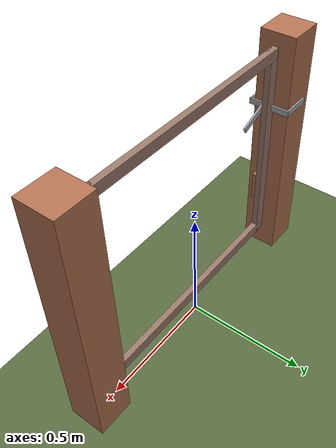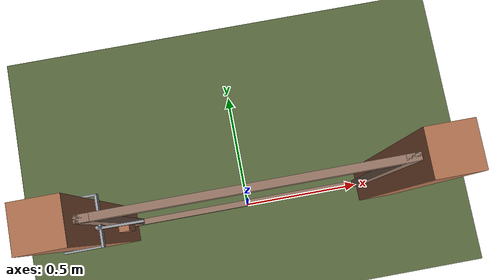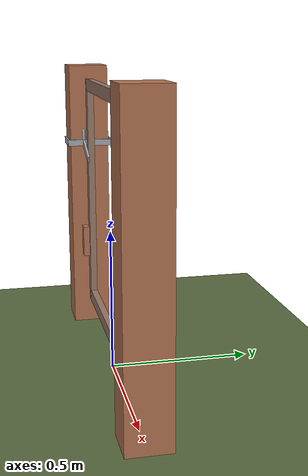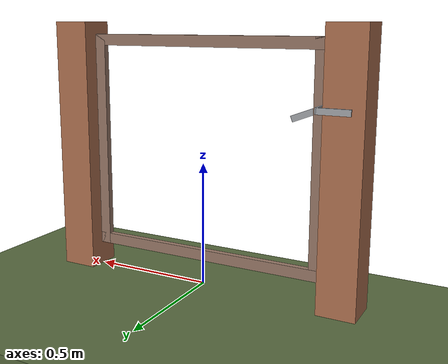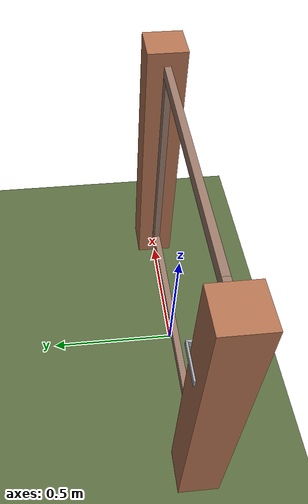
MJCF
<?xml version="1.0" ?>
<mujoco model="db0989_gate_swing_minimal">
  <compiler angle="radian" meshdir="../../hardware" texturedir="../../textures" autolimits="true" inertiafromgeom="false"/>
  <option timestep="0.002" integrator="implicitfast" cone="elliptic" impratio="10" noslip_iterations="3">
    <flag multiccd="enable"/>
  </option>
  <size memory="16M"/>
  <default>
    <geom condim="4" solref="0.005 1" solimp="0.95 0.99 0.001"/>
    <joint solreflimit="0.005 1" solimplimit="0.95 0.99 0.001"/>
    <tendon solreflimit="0.005 1"/>
    <equality solref="0.002 1"/>
  </default>
  <visual>
    <headlight ambient="0.4 0.4 0.4" diffuse="0.7 0.7 0.7" specular="0.2 0.2 0.2"/>
    <quality shadowsize="4096"/>
    <map znear="0.01" zfar="60"/>
  </visual>
  <asset>
    <material name="mat_floor" rgba="0.35 0.42 0.25 1" specular="0.2" shininess="0.15" reflectance="0"/>
    <material name="mat_wall" rgba="0.78 0.76 0.7 1" specular="0.2" shininess="0.1" reflectance="0"/>
    <material name="mat_leaf" rgba="0.6 0.475 0.41 1" specular="0.2" shininess="0.4" reflectance="0"/>
    <material name="mat_hinge" rgba="0.65 0.66 0.68 1" specular="0.74" shininess="0.5" reflectance="0.36"/>
    <material name="mat_op_steel_galvanized" rgba="0.65 0.66 0.68 1" specular="0.74" shininess="0.5" reflectance="0.36"/>
    <material name="mat_frame" rgba="0.7 0.45 0.32 1" specular="0.2" shininess="0.4" reflectance="0"/>
    <material name="mat_fence" rgba="0.7 0.45 0.32 1" specular="0.2" shininess="0.4" reflectance="0"/>
    <texture name="skybox" type="skybox" builtin="gradient" rgb1="0.6 0.7 0.85" rgb2="0.9 0.92 0.95" width="256" height="256"/>
  </asset>
  <worldbody>
    <light name="sun" pos="1.5 -2.5 4" dir="-0.3 0.5 -0.8" directional="true" diffuse="0.8 0.8 0.8" specular="0.3 0.3 0.3" castshadow="true"/>
    <light name="fill" pos="-1.5 2.5 3" dir="0.3 -0.5 -0.7" directional="true" diffuse="0.35 0.35 0.4" castshadow="false"/>
    <camera name="robot_view" pos="0 -1.875 0.985" xyaxes="1 0 0 0 0.26963 0.962964" fovy="52"/>
    <camera name="far_view" pos="0 1.875 0.985" xyaxes="-1 0 0 0 -0.26963 0.962964" fovy="52"/>
    <camera name="iso" pos="-1.425 -1.575 1.285" xyaxes="0.741536 -0.670913 0 0.242917 0.268487 0.932151" fovy="46"/>
    <camera name="detail_handle" pos="-0.306 -0.8245 1.085" xyaxes="0.97561 0.219512 0 -0.070934 0.315262 0.94635" fovy="38"/>
    <geom name="floor" type="box" size="6 6 0.05" pos="0 0 -0.05" material="mat_floor" group="0" contype="1" conaffinity="1" friction="0.8 0.005 0.0001" density="2400"/>
    <geom name="post_hinge" type="box" size="0.075 0.075 0.525" pos="0.581 0 0.525" material="mat_frame" group="0" contype="1" conaffinity="1" friction="0.6 0.005 0.0001" density="350"/>
    <geom name="post_latch" type="box" size="0.075 0.075 0.525" pos="-0.581 0 0.525" material="mat_frame" group="0" contype="1" conaffinity="1" friction="0.6 0.005 0.0001" density="350"/>
    <geom name="gate_stop" type="box" size="0.02 0.012 0.06" pos="-0.486 -0.0245 0.35" material="mat_frame" group="0" contype="1" conaffinity="1" friction="0.6 0.005 0.0001" density="350"/>
    <site name="approach_point" pos="0 -1.5 0" quat="1 0 0 0" size="0.05" rgba="0.2 0.9 0.2 0.5" group="4"/>
    <site name="goal_point" pos="0 1.5 0" quat="1 0 0 0" size="0.05" rgba="0.2 0.9 0.2 0.5" group="4"/>
    <site name="door_plane_center" pos="0 0 0.46" quat="1 0 0 0" size="0.02" rgba="0.2 0.9 0.2 0.5" group="4"/>
    <body name="leaf" pos="0.506 0 0">
      <inertial pos="-0.503 0 0.55" mass="9.457237" quat="0 0 0.707107 0.707107" diaginertia="0.639167779 0.788947692 1.427130343"/>
      <joint name="leaf_hinge" type="hinge" axis="0 0 -1" pos="-0.003 0.05 0" limited="true" range="0 1.745329" damping="0.21254" frictionloss="6.768484" armature="0.02"/>
      <geom name="leaf_slab_col" type="box" size="0.5 0.0125 0.45" pos="-0.503 0 0.55" material="mat_leaf" group="3" contype="1" conaffinity="1" rgba="0.8 0.3 0.3 0.25" friction="0.35 0.005 0.0001" density="1"/>
      <geom name="leaf_rail_b" type="box" size="0.5 0.0125 0.0225" pos="-0.503 0 0.1225" material="mat_leaf" group="1" contype="0" conaffinity="0" density="1"/>
      <geom name="leaf_rail_t" type="box" size="0.5 0.0125 0.0225" pos="-0.503 0 0.9775" material="mat_leaf" group="1" contype="0" conaffinity="0" density="1"/>
      <geom name="leaf_stile_h" type="box" size="0.0225 0.0125 0.45" pos="-0.0255 0 0.55" material="mat_leaf" group="1" contype="0" conaffinity="0" density="1"/>
      <geom name="leaf_stile_l" type="box" size="0.0225 0.0125 0.45" pos="-0.9805 0 0.55" material="mat_leaf" group="1" contype="0" conaffinity="0" density="1"/>
      <site name="leaf_edge_mid" pos="-1.003 0 0.45" quat="1 0 0 0" size="0.02" rgba="0.2 0.9 0.2 0.5" group="4"/>
      <body name="leaf_fork" pos="-0.863 0 0.7">
        <inertial pos="-0.134316 -0.007655 0.0449" mass="0.252369" quat="0.400494 0.085372 0.037573 0.911539" diaginertia="0.000796403 0.001031722 0.001738066"/>
        <joint name="leaf_fork_hinge" type="hinge" axis="0 1 0" limited="true" range="0 1.2" damping="0.049205" frictionloss="0.008804" armature="0.0001"/>
        <geom name="leaf_fork_arm" type="box" size="0.069176 0.004 0.012" pos="-0.0645 -0.0245 0.025" quat="0.982958 0 0.183833 0" material="mat_op_steel_galvanized" group="0" contype="1" conaffinity="1" friction="0.6 0.005 0.0001" density="2500"/>
        <geom name="leaf_fork_tine_n" type="box" size="0.0625 0.003 0.012" pos="-0.1915 -0.084 0.05" material="mat_op_steel_galvanized" group="0" contype="1" conaffinity="1" friction="0.6 0.005 0.0001" density="2500"/>
        <geom name="leaf_fork_tine_p" type="box" size="0.0625 0.003 0.012" pos="-0.1915 0.084 0.05" material="mat_op_steel_galvanized" group="0" contype="1" conaffinity="1" friction="0.6 0.005 0.0001" density="2500"/>
        <geom name="leaf_fork_bridge" type="box" size="0.004 0.087 0.012" pos="-0.129 0 0.05" material="mat_op_steel_galvanized" group="0" contype="1" conaffinity="1" friction="0.6 0.005 0.0001" density="2500"/>
        <geom name="leaf_fork_handle" type="capsule" size="0.006 0.018" pos="-0.129 -0.0245 0.08" material="mat_op_steel_galvanized" group="0" contype="1" conaffinity="1" friction="0.7 0.01 0.0001" density="2500"/>
        <site name="leaf_fork_grip" pos="-0.129 -0.0245 0.105" quat="1 0 0 0" size="0.012" rgba="0.2 0.9 0.2 0.5" group="4"/>
      </body>
    </body>
  </worldbody>
  <sensor>
    <jointpos name="leaf_hinge_pos" joint="leaf_hinge"/>
    <jointvel name="leaf_hinge_vel" joint="leaf_hinge"/>
    <jointpos name="leaf_fork_hinge_pos" joint="leaf_fork_hinge"/>
    <jointvel name="leaf_fork_hinge_vel" joint="leaf_fork_hinge"/>
  </sensor>
</mujoco>
